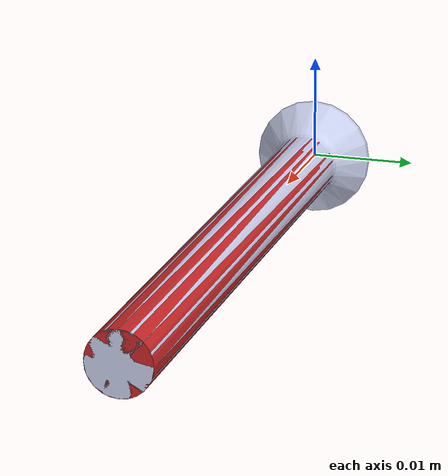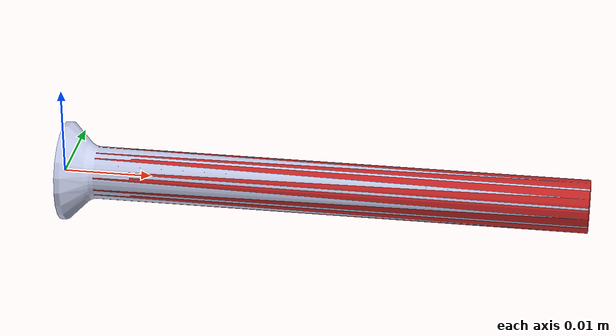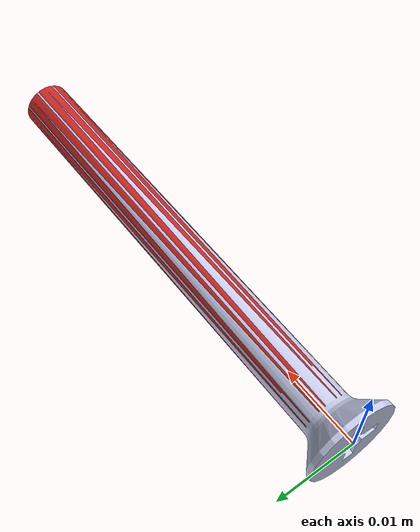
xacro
<?xml version="1.0" encoding="utf-8"?>
<robot name="C104322.SLDPRT" xmlns:xacro="http://www.ros.org/wiki/xacro">

	<link name="C104322.SLDPRT">
		<inertial>
			<origin xyz="0.028536 -9.8755E-20 -7.8235E-20" rpy="0 0 0"></origin>
			<mass value="0.0017863"></mass>
			<inertia ixx="9.8797E-09" ixy="1.3179E-19" ixz="1.3179E-19" iyy="5.862E-07" iyz="2.2882E-25" izz="5.862E-07"></inertia>
		</inertial>
		<visual>
			<origin xyz="0 0 0" rpy="0 0 0"></origin>
			<geometry>
				<mesh filename="package://object_description/urdfs_from_hj/C104322.SLDPRT/meshes/C104322.SLDPRT.STL"></mesh>
			</geometry>
			<material name="">
				<color rgba="0.79216 0.81961 0.93333 1"></color>
			</material>
		</visual>
		<collision>
			<origin xyz="0 0 0" rpy="0 0 0"></origin>
			<geometry>
				<mesh filename="package://object_description/urdfs_from_hj/C104322.SLDPRT/meshes/C104322.SLDPRT.STL"></mesh>
			</geometry>
		</collision>
	</link>
	<link name="C104322 pin screw 1">
		<visual>
			<origin xyz="0 0 0" rpy="0 0 0"></origin>
			<geometry>
				<cylinder length="0.056111111" radius="0.003"></cylinder>
			</geometry>
		</visual>
	</link>
	<joint name="C104322 pin screw 1 joint" type="fixed">
		<origin xyz="0.0319444445 0.0 0.0" rpy="-0.0 1.57079632679 0.0"></origin>
		<parent link="C104322.SLDPRT"></parent>
		<child link="C104322 pin screw 1"></child>
	</joint>
	<gazebo reference="C104322 pin screw 1">
		<material>Gazebo/RedTransparent</material>
	</gazebo>
</robot>
